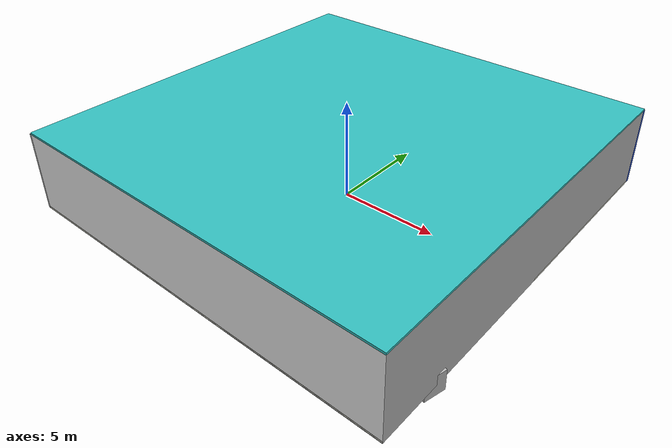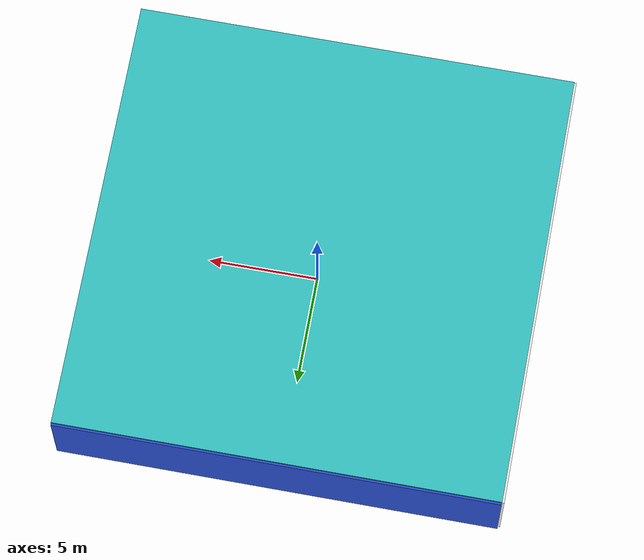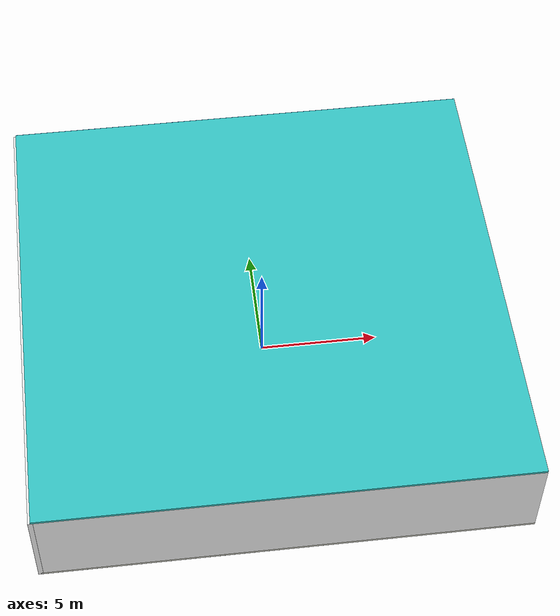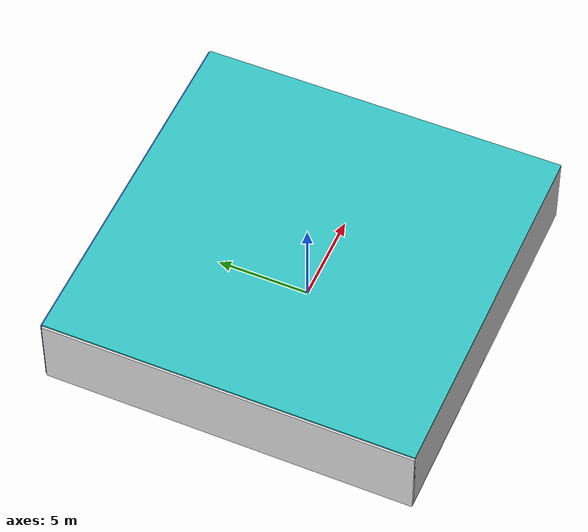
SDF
<sdf version="1.4">
 <world name="default">
  <physics type="ode">
   <max_step_size>0.001</max_step_size>
   <real_time_factor>1</real_time_factor>
   <real_time_update_rate>1000</real_time_update_rate>
   <gravity>0 0 -9.8</gravity>
  </physics>
  <scene><ambient>0.4 0.4 0.4 1</ambient><background>0.7 0.7 0.7 1</background><shadows>1</shadows></scene>
  <model name="Surrounding">
   <static>1</static>
   <link name="Ceiling">
    <collision name="Ceiling_Collision"><geometry><box><size>20 20 0.1</size></box></geometry></collision>
    <visual name="Ceiling_Visual">
     <geometry><box><size>20 20 0.1</size></box></geometry>
     <material>
      <script><uri>file://media/materials/scripts/gazebo.material</uri><name>Gazebo/TurquoiseGlow</name></script>
     </material>
    </visual>
    <pose>0 0 4.05 0 0 0</pose>
   </link>
   <link name="Wall_South">
    <collision name="Wall_South_Collision">
     <geometry><box><size>20 0 4</size></box></geometry>
     <pose>0 0 2 0 -0 0</pose>
    </collision>
    <visual name="Wall_South_Visual">
     <pose>0 0 2 0 -0 0</pose>
     <geometry><box><size>20 0 4</size></box></geometry>
     <material>
      <script><uri>file://media/materials/scripts/gazebo.material</uri><name>Gazebo/White</name></script>
     </material>
    </visual>
    <velocity_decay><linear>0</linear><angular>0</angular></velocity_decay>
    <pose>0 -10 0 0 -0 0</pose>
   </link>
   <link name="Wall_East">
    <collision name="Wall_21_Collision">
     <geometry><box><size>20 0 4</size></box></geometry>
     <pose>0 0 2 0 -0 0</pose>
    </collision>
    <visual name="Wall_21_Visual">
     <pose>0 0 2 0 -0 0</pose>
     <geometry><box><size>20 0 4</size></box></geometry>
     <material>
      <script><uri>file://media/materials/scripts/gazebo.material</uri><name>Gazebo/JointAnchor</name></script>
     </material>
    </visual>
    <velocity_decay><linear>0</linear><angular>0</angular></velocity_decay>
    <pose>10 0 0 0 -0 1.5708</pose>
   </link>
   <link name="Wall_North">
    <collision name="Wall_22_Collision">
     <geometry><box><size>20 0.2 4</size></box></geometry>
     <pose>0 0 2 0 -0 0</pose>
    </collision>
    <visual name="Wall_22_Visual">
     <pose>0 0 2 0 -0 0</pose>
     <geometry><box><size>20 0.2 4</size></box></geometry>
     <material>
      <script><uri>file://media/materials/scripts/gazebo.material</uri><name>Gazebo/BlueGlow</name></script>
     </material>
    </visual>
    <velocity_decay><linear>0</linear><angular>0</angular></velocity_decay>
    <pose>0 10 0 0 -0 0</pose>
   </link>
   <link name="Wall_West">
    <collision name="Wall_23_Collision">
     <geometry><box><size>20 0.2 4</size></box></geometry>
     <pose>0 0 2 0 -0 0</pose>
    </collision>
    <visual name="Wall_23_Visual">
     <pose>0 0 2 0 -0 0</pose>
     <geometry><box><size>20 0.2 4</size></box></geometry>
     <material>
      <script><uri>file://media/materials/scripts/gazebo.material</uri><name>Gazebo/WhiteGlow</name></script>
     </material>
    </visual>
    <velocity_decay><linear>0</linear><angular>0</angular></velocity_decay>
    <pose>-10 0 0 0 0 -1.5708</pose>
   </link>
   <link name="Ground_link">
    <collision name="collision">
     <pose>0 0 .05 0 -0 0</pose>
     <geometry><box><size>20 20 0.1</size></box></geometry>
    </collision>
    <visual name="visual">
     <pose>0 0 .05 0 -0 0</pose>
     <geometry><box><size>20 20 0.1</size></box></geometry>
     <material>
      <script><uri>file://media/materials/scripts/gazebo.material</uri><name>Gazebo/PaintedWall</name></script>
     </material>
    </visual>
   </link>
   <static>1</static>
  </model>
  <spherical_coordinates>
   <surface_model>EARTH_WGS84</surface_model>
   <latitude_deg>0</latitude_deg>
   <longitude_deg>0</longitude_deg>
   <elevation>0</elevation>
   <heading_deg>0</heading_deg>
  </spherical_coordinates>
  <light name="lightball_0" type="diffuse">
   <diffuse>0.8 0.8 0.8 1</diffuse>
   <specular>0.2 0.2 0.2 1</specular>
   <attenuation>
    <range>100</range>
    <constant>0.7</constant>
    <linear>0.01</linear>
    <quadratic>0.001</quadratic>
   </attenuation>
   <direction>-0.5 0.1 -0.9</direction>
   <pose>7.59272811392 5.42225683724 2.44543702357 0 0 0</pose>
  </light>
  <light name="lightball_1" type="diffuse">
   <diffuse>0.8 0.8 0.8 1</diffuse>
   <specular>0.2 0.2 0.2 1</specular>
   <attenuation>
    <range>100</range>
    <constant>0.7</constant>
    <linear>0.01</linear>
    <quadratic>0.001</quadratic>
   </attenuation>
   <direction>-0.5 0.1 -0.9</direction>
   <pose>8.30623535196 7.19373982269 2.35327840052 0 0 0</pose>
  </light>
  <light name="lightball_2" type="diffuse">
   <diffuse>0.8 0.8 0.8 1</diffuse>
   <specular>0.2 0.2 0.2 1</specular>
   <attenuation>
    <range>100</range>
    <constant>0.7</constant>
    <linear>0.01</linear>
    <quadratic>0.001</quadratic>
   </attenuation>
   <direction>-0.5 0.1 -0.9</direction>
   <pose>-2.74900143346 6.73166564543 1.8314176462 0 0 0</pose>
  </light>
  <light name="lightball_3" type="diffuse">
   <diffuse>0.8 0.8 0.8 1</diffuse>
   <specular>0.2 0.2 0.2 1</specular>
   <attenuation>
    <range>100</range>
    <constant>0.7</constant>
    <linear>0.01</linear>
    <quadratic>0.001</quadratic>
   </attenuation>
   <direction>-0.5 0.1 -0.9</direction>
   <pose>3.3630885928 -9.9526052071 0.73599969008 0 0 0</pose>
  </light>
  <light name="lightball_4" type="diffuse">
   <diffuse>0.8 0.8 0.8 1</diffuse>
   <specular>0.2 0.2 0.2 1</specular>
   <attenuation>
    <range>100</range>
    <constant>0.7</constant>
    <linear>0.01</linear>
    <quadratic>0.001</quadratic>
   </attenuation>
   <direction>-0.5 0.1 -0.9</direction>
   <pose>4.73104460828 4.78361395067 3.22094417364 0 0 0</pose>
  </light>
  <light name="lightball_5" type="diffuse">
   <diffuse>0.8 0.8 0.8 1</diffuse>
   <specular>0.2 0.2 0.2 1</specular>
   <attenuation>
    <range>100</range>
    <constant>0.7</constant>
    <linear>0.01</linear>
    <quadratic>0.001</quadratic>
   </attenuation>
   <direction>-0.5 0.1 -0.9</direction>
   <pose>-8.36794673691 -1.56450280704 0.798694826849 0 0 0</pose>
  </light>
  <light name="lightball_6" type="diffuse">
   <diffuse>0.8 0.8 0.8 1</diffuse>
   <specular>0.2 0.2 0.2 1</specular>
   <attenuation>
    <range>100</range>
    <constant>0.7</constant>
    <linear>0.01</linear>
    <quadratic>0.001</quadratic>
   </attenuation>
   <direction>-0.5 0.1 -0.9</direction>
   <pose>-3.69095145716 -4.52636380989 1.58811086273 0 0 0</pose>
  </light>
  <light name="lightball_7" type="diffuse">
   <diffuse>0.8 0.8 0.8 1</diffuse>
   <specular>0.2 0.2 0.2 1</specular>
   <attenuation>
    <range>100</range>
    <constant>0.7</constant>
    <linear>0.01</linear>
    <quadratic>0.001</quadratic>
   </attenuation>
   <direction>-0.5 0.1 -0.9</direction>
   <pose>5.55303339575 4.45994075644 2.23173359768 0 0 0</pose>
  </light>
  <light name="lightball_8" type="diffuse">
   <diffuse>0.8 0.8 0.8 1</diffuse>
   <specular>0.2 0.2 0.2 1</specular>
   <attenuation>
    <range>100</range>
    <constant>0.7</constant>
    <linear>0.01</linear>
    <quadratic>0.001</quadratic>
   </attenuation>
   <direction>-0.5 0.1 -0.9</direction>
   <pose>7.7297775661 -4.18587657349 2.54322810471 0 0 0</pose>
  </light>
  <light name="lightball_9" type="diffuse">
   <diffuse>0.8 0.8 0.8 1</diffuse>
   <specular>0.2 0.2 0.2 1</specular>
   <attenuation>
    <range>100</range>
    <constant>0.7</constant>
    <linear>0.01</linear>
    <quadratic>0.001</quadratic>
   </attenuation>
   <direction>-0.5 0.1 -0.9</direction>
   <pose>3.26148950909 5.52437798041 3.74888213591 0 0 0</pose>
  </light>
  <light name="lightball_10" type="diffuse">
   <diffuse>0.8 0.8 0.8 1</diffuse>
   <specular>0.2 0.2 0.2 1</specular>
   <attenuation>
    <range>100</range>
    <constant>0.7</constant>
    <linear>0.01</linear>
    <quadratic>0.001</quadratic>
   </attenuation>
   <direction>-0.5 0.1 -0.9</direction>
   <pose>5.07274154439 7.32545466771 0.978407568404 0 0 0</pose>
  </light>
  <light name="lightball_11" type="diffuse">
   <diffuse>0.8 0.8 0.8 1</diffuse>
   <specular>0.2 0.2 0.2 1</specular>
   <attenuation>
    <range>100</range>
    <constant>0.7</constant>
    <linear>0.01</linear>
    <quadratic>0.001</quadratic>
   </attenuation>
   <direction>-0.5 0.1 -0.9</direction>
   <pose>-8.32296935301 -7.30807817252 1.8692357344 0 0 0</pose>
  </light>
  <light name="lightball_12" type="diffuse">
   <diffuse>0.8 0.8 0.8 1</diffuse>
   <specular>0.2 0.2 0.2 1</specular>
   <attenuation>
    <range>100</range>
    <constant>0.7</constant>
    <linear>0.01</linear>
    <quadratic>0.001</quadratic>
   </attenuation>
   <direction>-0.5 0.1 -0.9</direction>
   <pose>-6.83924105984 -4.04195307247 1.79003379151 0 0 0</pose>
  </light>
  <include><uri>model://cabinet</uri><pose>-7.4374048312 -1.88748066998 0 0 0 2.17468286747</pose></include>
  <include><uri>model://cabinet</uri><pose>-7.47360395204 3.7963626344 0 0 0 2.80741405004</pose></include>
  <include><uri>model://table</uri><pose>-3.39397805655 -0.938091632545 0 0 0 2.84907096489</pose></include>
  <include><uri>model://table</uri><pose>-1.99735462081 -1.36661625285 0 0 0 1.7998649094</pose></include>
  <include><uri>model://cabinet</uri><pose>-0.470292720285 3.39941473766 0 0 0 2.44290248221</pose></include>
  <include>
   <uri>model://textured_shapes</uri>
   <pose>0.759704778406 1.77765337624 0 0 0 2.72307457689</pose>
  </include>
  <include><uri>model://cabinet</uri><pose>4.04393163766 -1.91914387568 0 0 0 0.807815711658</pose></include>
  <include>
   <uri>model://textured_shapes</uri>
   <pose>8.04348552234 -6.50654942214 0 0 0 1.33172046138</pose>
  </include>
  <include>
   <uri>model://robocup_3Dsim_goal</uri>
   <pose>8.6092993764 7.72783129962 0 0 0 0.148817633447</pose>
  </include>
 </world>
</sdf>

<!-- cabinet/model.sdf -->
<sdf version="1.5">
  <model name="cabinet">
    <static>true</static>
    <link name="cabinet_bottom_plate">
      <inertial>
        <pose>0 0 -1 0 0 0</pose>
        <inertia>
          <ixx>2.050000</ixx>
          <ixy>0</ixy>
          <ixz>0</ixz>
          <iyy>2.050000</iyy>
          <iyz>0</iyz>
          <izz>2.050000</izz>
        </inertia>
        <mass>25.000000</mass>
      </inertial>
      <collision name="cabinet_bottom_plate_geom">
        <pose>0 0 0.010000 0 0 0</pose>
        <geometry>
          <box>
            <size>0.450000 0.450000 0.020000</size>
          </box>
        </geometry>
      </collision>
      <visual name="cabinet_bottom_plate_geom_visual">
        <pose>0 0 0.010000 0 0 0</pose>
        <geometry>
          <box>
            <size>0.450000 0.450000 0.020000</size>
          </box>
        </geometry>
        <material>
          <script>
            <uri>model://media/materials/scripts/gazebo.material</uri>
            <name>Gazebo/Wood</name>
          </script>
        </material>
      </visual>
      <collision name="cabinet_bottom_plate_geom_cabinet_back_plate">
        <pose>0.235000 0 0.510000 0 0 0</pose>
        <geometry>
          <box>
            <size>0.020000 0.450000 1.020000</size>
          </box>
        </geometry>
      </collision>
      <visual name="cabinet_bottom_plate_geom_cabinet_back_plate_visual">
        <pose>0.235000 0 0.510000 0 0 0</pose>
        <geometry>
          <box>
            <size>0.020000 0.450000 1.020000</size>
          </box>
        </geometry>
        <material>
          <script>
            <uri>model://media/materials/scripts/gazebo.material</uri>
            <name>Gazebo/Wood</name>
          </script>
        </material>
      </visual>
      <collision name="cabinet_bottom_plate_geom_cabinet_left_plate">
        <pose>0 0.235000 0.510000 0 0 0</pose>
        <geometry>
          <box>
            <size>0.450000 0.020000 1.020000</size>
          </box>
        </geometry>
      </collision>
      <visual name="cabinet_bottom_plate_geom_cabinet_left_plate_visual">
        <pose>0 0.235000 0.510000 0 0 0</pose>
        <geometry>
          <box>
            <size>0.450000 0.020000 1.020000</size>
          </box>
        </geometry>
        <material>
          <script>
            <uri>model://media/materials/scripts/gazebo.material</uri>
            <name>Gazebo/Wood</name>
          </script>
        </material>
      </visual>
      <collision name="cabinet_bottom_plate_geom_cabinet_middle_plate">
        <pose>0 0 0.510000 0 0 0</pose>
        <geometry>
          <box>
            <size>0.450000 0.450000 0.020000</size>
          </box>
        </geometry>
      </collision>
      <visual name="cabinet_bottom_plate_geom_cabinet_middle_plate_visual">
        <pose>0 0 0.510000 0 0 0</pose>
        <geometry>
          <box>
            <size>0.450000 0.450000 0.020000</size>
          </box>
        </geometry>
        <material>
          <script>
            <uri>model://media/materials/scripts/gazebo.material</uri>
            <name>Gazebo/Wood</name>
          </script>
        </material>
      </visual>
      <collision name="cabinet_bottom_plate_geom_cabinet_right_plate">
        <pose>0 -0.235000 0.510000 0 0 0</pose>
        <geometry>
          <box>
            <size>0.450000 0.020000 1.020000</size>
          </box>
        </geometry>
      </collision>
      <visual name="cabinet_bottom_plate_geom_cabinet_right_plate_visual">
        <pose>0 -0.235000 0.510000 0 0 0</pose>
        <geometry>
          <box>
            <size>0.450000 0.020000 1.020000</size>
          </box>
        </geometry>
        <material>
          <script>
            <uri>model://media/materials/scripts/gazebo.material</uri>
            <name>Gazebo/Wood</name>
          </script>
        </material>
      </visual>
      <collision name="cabinet_bottom_plate_geom_cabinet_top_plate">
        <pose>0 0 1.010000 0 0 0</pose>
        <geometry>
          <box>
            <size>0.450000 0.450000 0.020000</size>
          </box>
        </geometry>
      </collision>
      <visual name="cabinet_bottom_plate_geom_cabinet_top_plate_visual">
        <pose>0 0 1.010000 0 0 0</pose>
        <geometry>
          <box>
            <size>0.450000 0.450000 0.020000</size>
          </box>
        </geometry>
        <material>
          <script>
            <uri>model://media/materials/scripts/gazebo.material</uri>
            <name>Gazebo/Wood</name>
          </script>
        </material>
      </visual>
    </link>
  </model>
</sdf>

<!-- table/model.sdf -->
<sdf version="1.5">
  <model name="table">
    <static>true</static>
    <link name="link">
      <collision name="surface">
        <pose>0 0 1.0 0 0 0</pose>
        <geometry>
          <box>
            <size>1.5 0.8 0.03</size>
          </box>
        </geometry>
        <surface>
          <friction>
            <ode>
              <mu>0.6</mu>
              <mu2>0.6</mu2>
            </ode>
          </friction>
        </surface>
      </collision>
      <visual name="visual1">
        <pose>0 0 1.0 0 0 0</pose>
        <geometry>
          <box>
            <size>1.5 0.8 0.03</size>
          </box>
        </geometry>
        <material>
          <script>
            <uri>model://media/materials/scripts/gazebo.material</uri>
            <name>Gazebo/Wood</name>
          </script>
        </material>
      </visual>
      <collision name="front_left_leg">
        <pose>0.68 0.38 0.5 0 0 0</pose>
        <geometry>
          <cylinder>
            <radius>0.02</radius>
            <length>1.0</length>
          </cylinder>
        </geometry>
      </collision>
      <visual name="front_left_leg">
        <pose>0.68 0.38 0.5 0 0 0</pose>
        <geometry>
          <cylinder>
            <radius>0.02</radius>
            <length>1.0</length>
          </cylinder>
        </geometry>
        <material>
          <script>
            <uri>model://media/materials/scripts/gazebo.material</uri>
            <name>Gazebo/Grey</name>
          </script>
        </material>
      </visual>
      <collision name="front_right_leg">
        <pose>0.68 -0.38 0.5 0 0 0</pose>
        <geometry>
          <cylinder>
            <radius>0.02</radius>
            <length>1.0</length>
          </cylinder>
        </geometry>
      </collision>
      <visual name="front_right_leg">
        <pose>0.68 -0.38 0.5 0 0 0</pose>
        <geometry>
          <cylinder>
            <radius>0.02</radius>
            <length>1.0</length>
          </cylinder>
        </geometry>
        <material>
          <script>
            <uri>model://media/materials/scripts/gazebo.material</uri>
            <name>Gazebo/Grey</name>
          </script>
        </material>
      </visual>
      <collision name="back_right_leg">
        <pose>-0.68 -0.38 0.5 0 0 0</pose>
        <geometry>
          <cylinder>
            <radius>0.02</radius>
            <length>1.0</length>
          </cylinder>
        </geometry>
      </collision>
      <visual name="back_right_leg">
        <pose>-0.68 -0.38 0.5 0 0 0</pose>
        <geometry>
          <cylinder>
            <radius>0.02</radius>
            <length>1.0</length>
          </cylinder>
        </geometry>
        <material>
          <script>
            <uri>model://media/materials/scripts/gazebo.material</uri>
            <name>Gazebo/Grey</name>
          </script>
        </material>
      </visual>
      <collision name="back_left_leg">
        <pose>-0.68 0.38 0.5 0 0 0</pose>
        <geometry>
          <cylinder>
            <radius>0.02</radius>
            <length>1.0</length>
          </cylinder>
        </geometry>
      </collision>
      <visual name="back_left_leg">
        <pose>-0.68 0.38 0.5 0 0 0</pose>
        <geometry>
          <cylinder>
            <radius>0.02</radius>
            <length>1.0</length>
          </cylinder>
        </geometry>
        <material>
          <script>
            <uri>model://media/materials/scripts/gazebo.material</uri>
            <name>Gazebo/Grey</name>
          </script>
        </material>
      </visual>
    </link>
  </model>
</sdf>

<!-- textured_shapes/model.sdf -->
<sdf version="1.6">
  <model name="textured_shapes">
    <pose>0 0 0.5 0 0 0</pose>
    <link name="box">
      <pose>0 -1.5 0 0 0 0</pose>
      <collision name="collision">
        <geometry>
          <box>
            <size>1 1 1</size>
          </box>
        </geometry>
      </collision>
      <visual name="visual">
        <geometry>
          <box>
            <size>1 1 1</size>
          </box>
        </geometry>
        <material>
          <script>
            <uri>model://../model_source/models/textured_shapes/materials/scripts</uri>
            <uri>model://../model_source/models/textured_shapes/materials/textures</uri>
            <name>TexturedShape/Squares</name>
          </script>
        </material>
      </visual>
    </link>
    <link name="sphere">
      <collision name="collision">
        <geometry>
          <sphere>
            <radius>0.5</radius>
          </sphere>
        </geometry>
      </collision>
      <visual name="visual">
        <geometry>
          <sphere>
            <radius>0.5</radius>
          </sphere>
        </geometry>
        <material>
          <script>
            <uri>model://../model_source/models/textured_shapes/materials/scripts</uri>
            <uri>model://../model_source/models/textured_shapes/materials/textures</uri>
            <name>TexturedShape/Squares</name>
          </script>
        </material>
      </visual>
    </link>
    <link name="cylinder">
      <pose>0 1.5 0 0 0 0</pose>
      <collision name="collision">
        <geometry>
          <cylinder>
            <radius>0.5</radius>
            <length>1</length>
          </cylinder>
        </geometry>
      </collision>
      <visual name="visual">
        <geometry>
          <cylinder>
            <radius>0.5</radius>
            <length>1</length>
          </cylinder>
        </geometry>
        <material>
          <script>
            <uri>model://../model_source/models/textured_shapes/materials/scripts</uri>
            <uri>model://../model_source/models/textured_shapes/materials/textures</uri>
            <name>TexturedShape/Squares</name>
          </script>
        </material>
      </visual>
    </link>
  </model>
</sdf>

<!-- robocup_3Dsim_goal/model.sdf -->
<sdf version="1.5">
  <model name="robocup_3d_goal">
    <static>true</static>
    <link name="left_post">
      <pose>0 1.05 0.45 0 0 0</pose>
      <collision name="collision">
        <geometry>
          <cylinder>
            <radius>0.05</radius>
            <length>0.9</length>
          </cylinder>
        </geometry>
      </collision>
      <visual name="visual">
        <geometry>
          <cylinder>
            <radius>0.05</radius>
            <length>0.9</length>
          </cylinder>
        </geometry>
        <material>
          <script>
            <uri>file://media/materials/scripts/gazebo.material</uri>
            <name>Gazebo/ZincYellow</name>
          </script>
        </material>
      </visual>
    </link>
    <link name="left_support_horiz_lower">
      <pose>0.30 1.05 0.01 0 0 0</pose>
      <collision name="collision">
        <geometry>
          <box>
            <size>0.50 0.02 0.02</size>
          </box>
        </geometry>
      </collision>
      <visual name="visual">
        <geometry>
          <box>
            <size>0.50 0.02 0.02</size>
          </box>
        </geometry>
        <material>
          <script>
            <uri>file://media/materials/scripts/gazebo.material</uri>
            <name>Gazebo/White</name>
          </script>
        </material>
      </visual>
    </link>
    <link name="left_support_horiz_upper">
      <pose>0.30 1.05 0.79 0 0 0</pose>
      <collision name="collision">
        <geometry>
          <box>
            <size>0.50 0.02 0.02</size>
          </box>
        </geometry>
      </collision>
      <visual name="visual">
        <geometry>
          <box>
            <size>0.50 0.02 0.02</size>
          </box>
        </geometry>
        <material>
          <script>
            <uri>file://media/materials/scripts/gazebo.material</uri>
            <name>Gazebo/White</name>
          </script>
        </material>
      </visual>
    </link>
    <link name="left_support_vertical">
      <pose>0.56 1.05 0.4 0 1.5708 0</pose>
      <collision name="collision">
        <geometry>
          <box>
            <size>0.80 0.02 0.02</size>
          </box>
        </geometry>
      </collision>
      <visual name="visual">
        <geometry>
          <box>
            <size>0.80 0.02 0.02</size>
          </box>
        </geometry>
        <material>
          <script>
            <uri>file://media/materials/scripts/gazebo.material</uri>
            <name>Gazebo/White</name>
          </script>
        </material>
      </visual>
    </link>
    <link name="right_support_horiz_lower">
      <pose>0.30 -1.05 0.01 0 0 0</pose>
      <collision name="collision">
        <geometry>
          <box>
            <size>0.50 0.02 0.02</size>
          </box>
        </geometry>
      </collision>
      <visual name="visual">
        <geometry>
          <box>
            <size>0.50 0.02 0.02</size>
          </box>
        </geometry>
        <material>
          <script>
            <uri>file://media/materials/scripts/gazebo.material</uri>
            <name>Gazebo/White</name>
          </script>
        </material>
      </visual>
    </link>
    <link name="right_support_horiz_upper">
      <pose>0.30 -1.05 0.79 0 0 0</pose>
      <collision name="collision">
        <geometry>
          <box>
            <size>0.50 0.02 0.02</size>
          </box>
        </geometry>
      </collision>
      <visual name="visual">
        <geometry>
          <box>
            <size>0.50 0.02 0.02</size>
          </box>
        </geometry>
        <material>
          <script>
            <uri>file://media/materials/scripts/gazebo.material</uri>
            <name>Gazebo/White</name>
          </script>
        </material>
      </visual>
    </link>
    <link name="right_support_vertical">
      <pose>0.56 -1.05 0.4 0 1.5708 0</pose>
      <collision name="collision">
        <geometry>
          <box>
            <size>0.80 0.02 0.02</size>
          </box>
        </geometry>
      </collision>
      <visual name="visual">
        <geometry>
          <box>
            <size>0.80 0.02 0.02</size>
          </box>
        </geometry>
        <material>
          <script>
            <uri>file://media/materials/scripts/gazebo.material</uri>
            <name>Gazebo/White</name>
          </script>
        </material>
      </visual>
    </link>
    <link name="center_support_horiz_lower">
      <pose>0.56 0 0.01 0 1.5708 0</pose>
      <collision name="collision">
        <geometry>
          <box>
            <size>0.02 2.08 0.02</size>
          </box>
        </geometry>
      </collision>
      <visual name="visual">
        <geometry>
          <box>
            <size>0.02 2.08 0.02</size>
          </box>
        </geometry>
        <material>
          <script>
            <uri>file://media/materials/scripts/gazebo.material</uri>
            <name>Gazebo/White</name>
          </script>
        </material>
      </visual>
    </link>
    <link name="center_support_horiz_upper">
      <pose>0.56 0 0.79 0 1.5708 0</pose>
      <collision name="collision">
        <geometry>
          <box>
            <size>0.02 2.08 0.02</size>
          </box>
        </geometry>
      </collision>
      <visual name="visual">
        <geometry>
          <box>
            <size>0.02 2.08 0.02</size>
          </box>
        </geometry>
        <material>
          <script>
            <uri>file://media/materials/scripts/gazebo.material</uri>
            <name>Gazebo/White</name>
          </script>
        </material>
      </visual>
    </link>
    <link name="right_post">
      <pose>0 -1.05 0.45 0 0 0</pose>
      <collision name="collision">
        <geometry>
          <cylinder>
            <radius>0.05</radius>
            <length>0.9</length>
          </cylinder>
        </geometry>
      </collision>
      <visual name="visual">
        <geometry>
          <cylinder>
            <radius>0.05</radius>
            <length>0.9</length>
          </cylinder>
        </geometry>
        <material>
          <script>
            <uri>file://media/materials/scripts/gazebo.material</uri>
            <name>Gazebo/ZincYellow</name>
          </script>
        </material>
      </visual>
    </link>
    <link name="crossbar">
      <pose>0 0 0.85 1.57 1.57 0</pose>
      <collision name="collision">
        <geometry>
          <cylinder>
            <radius>0.05</radius>
            <length>2.0</length>
          </cylinder>
        </geometry>
      </collision>
      <visual name="visual">
        <geometry>
          <cylinder>
            <radius>0.05</radius>
            <length>2.0</length>
          </cylinder>
        </geometry>
        <material>
          <script>
            <uri>file://media/materials/scripts/gazebo.material</uri>
            <name>Gazebo/ZincYellow</name>
          </script>
        </material>
      </visual>
    </link>
    <link name="center_net">
      <pose>0.56 0 0.40 0 0 0</pose>
      <collision name="collision">
        <geometry>
          <box>
            <size>0.01 2.1 0.80</size>
          </box>
        </geometry>
      </collision>
      <visual name="visual">
        <geometry>
          <box>
            <size>0.01 2.1 0.80</size>
          </box>
        </geometry>
        <material>
          <script>
            <uri>model://../model_source/models/robocup09_spl_field/materials/scripts/</uri>
            <uri>model://../model_source/models/robocup09_spl_field/materials/textures/</uri>
            <name>RoboCup/Net</name>
          </script>
        </material>
      </visual>
    </link>
    <link name="left_net">
      <pose>0.30 1.05 0.40 0 0 0</pose>
      <collision name="collision">
        <geometry>
          <box>
            <size>0.50 0.01 0.76</size>
          </box>
        </geometry>
      </collision>
      <visual name="visual">
        <geometry>
          <box>
            <size>0.50 0.01 0.76</size>
          </box>
        </geometry>
        <material>
          <script>
            <uri>model://../model_source/models/robocup09_spl_field/materials/scripts/</uri>
            <uri>model://../model_source/models/robocup09_spl_field/materials/textures/</uri>
            <name>RoboCup/Net</name>
          </script>
        </material>
      </visual>
    </link>
    <link name="right_net">
      <pose>0.30 -1.05 0.40 0 0 0</pose>
      <collision name="collision">
        <geometry>
          <box>
            <size>0.50 0.01 0.76</size>
          </box>
        </geometry>
      </collision>
      <visual name="visual">
        <geometry>
          <box>
            <size>0.50 0.01 0.76</size>
          </box>
        </geometry>
        <material>
          <script>
            <uri>model://../model_source/models/robocup09_spl_field/materials/scripts/</uri>
            <uri>model://../model_source/models/robocup09_spl_field/materials/textures/</uri>
            <name>RoboCup/Net</name>
          </script>
        </material>
      </visual>
    </link>
  </model>
</sdf>
